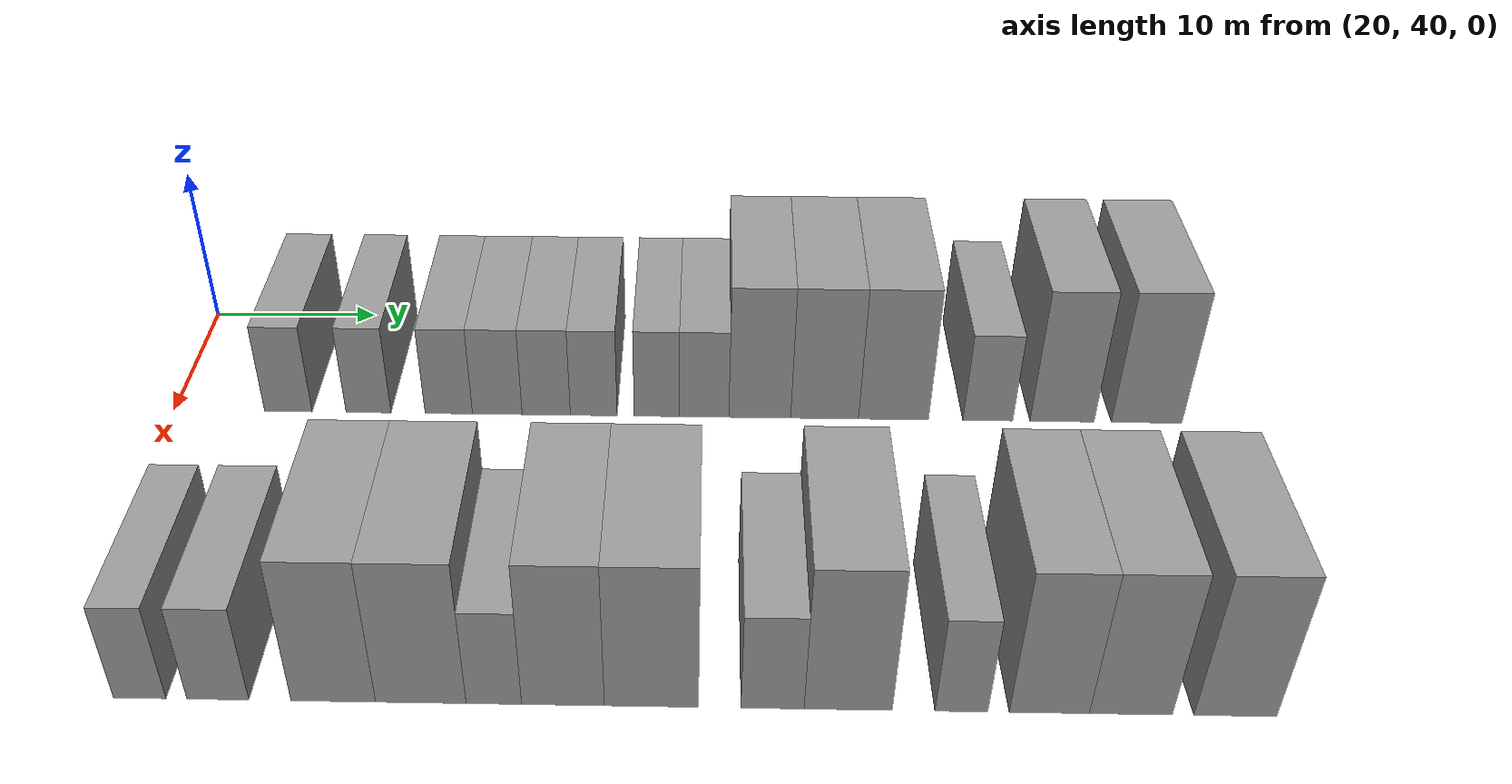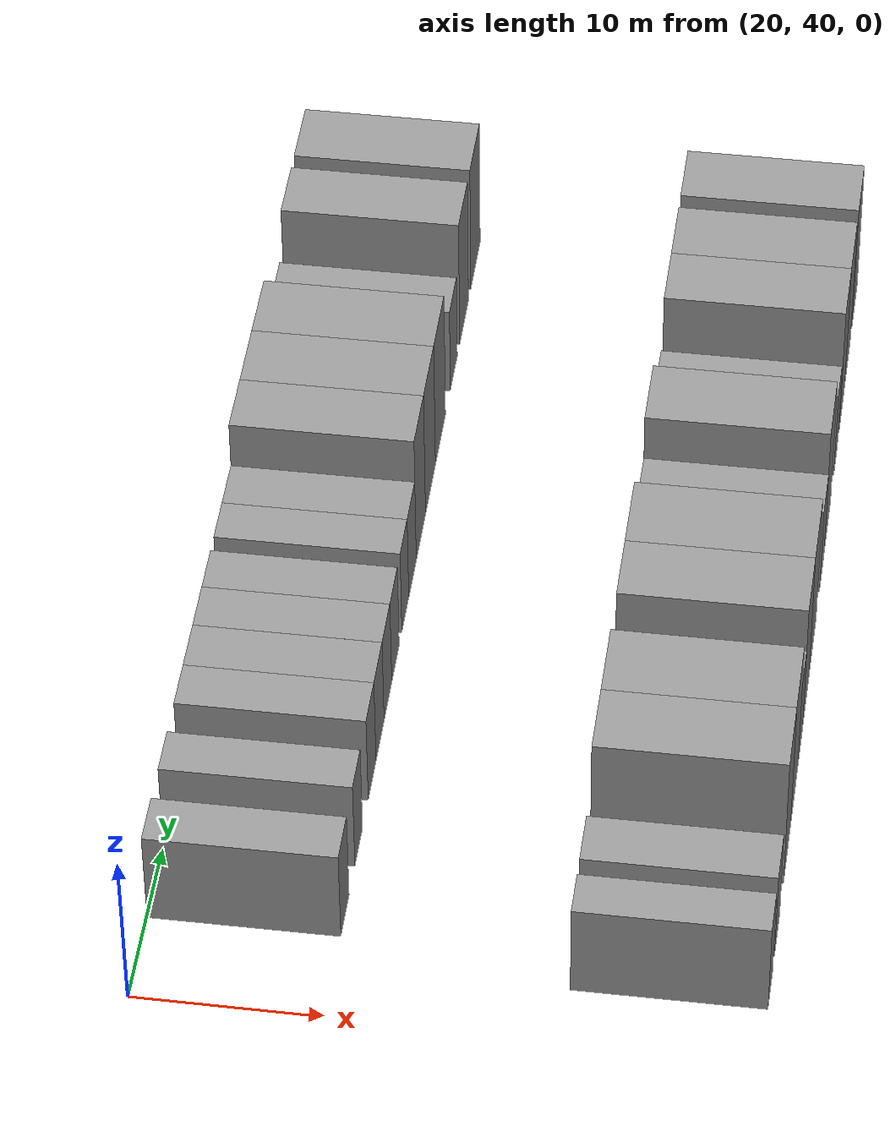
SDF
<sdf version="1.6">
 <world name="default">
  <model name="building_69">
   <static>1</static>
   <pose>25.0000 46.7076 0 0.000000 0.000000 0.000000</pose>
   <link name="link">
    <pose>0 0 3.00 0 0 0</pose>
    <collision name="collision"><geometry><box><size>10.0000 2.7882 6.0000</size></box></geometry></collision>
    <visual name="visual">
     <cast_shadows>0</cast_shadows>
     <geometry><box><size>10.0000 2.7882 6.0000</size></box></geometry>
     <material>
      <script>
       <uri>model://grey_wall/materials/scripts</uri>
       <uri>model://grey_wall/materials/textures</uri>
       <name>vrc/grey_wall</name>
      </script>
     </material>
    </visual>
   </link>
  </model>
  <model name="building_70">
   <static>1</static>
   <pose>25.0000 51.4204 0 0.000000 0.000000 0.000000</pose>
   <link name="link">
    <pose>0 0 3.00 0 0 0</pose>
    <collision name="collision"><geometry><box><size>10.0000 2.6373 6.0000</size></box></geometry></collision>
    <visual name="visual">
     <cast_shadows>0</cast_shadows>
     <geometry><box><size>10.0000 2.6373 6.0000</size></box></geometry>
     <material>
      <script>
       <uri>model://grey_wall/materials/scripts</uri>
       <uri>model://grey_wall/materials/textures</uri>
       <name>vrc/grey_wall</name>
      </script>
     </material>
    </visual>
   </link>
  </model>
  <model name="building_71">
   <static>1</static>
   <pose>25.0000 56.1259 0 0.000000 0.000000 0.000000</pose>
   <link name="link">
    <pose>0 0 3.00 0 0 0</pose>
    <collision name="collision"><geometry><box><size>10.0000 2.7737 6.0000</size></box></geometry></collision>
    <visual name="visual">
     <cast_shadows>0</cast_shadows>
     <geometry><box><size>10.0000 2.7737 6.0000</size></box></geometry>
     <material>
      <script>
       <uri>model://grey_wall/materials/scripts</uri>
       <uri>model://grey_wall/materials/textures</uri>
       <name>vrc/grey_wall</name>
      </script>
     </material>
    </visual>
   </link>
  </model>
  <model name="building_72">
   <static>1</static>
   <pose>25.0000 58.9676 0 0.000000 0.000000 0.000000</pose>
   <link name="link">
    <pose>0 0 3.00 0 0 0</pose>
    <collision name="collision"><geometry><box><size>10.0000 2.9098 6.0000</size></box></geometry></collision>
    <visual name="visual">
     <cast_shadows>0</cast_shadows>
     <geometry><box><size>10.0000 2.9098 6.0000</size></box></geometry>
     <material>
      <script>
       <uri>model://grey_wall/materials/scripts</uri>
       <uri>model://grey_wall/materials/textures</uri>
       <name>vrc/grey_wall</name>
      </script>
     </material>
    </visual>
   </link>
  </model>
  <model name="building_73">
   <static>1</static>
   <pose>25.0000 61.8319 0 0.000000 0.000000 0.000000</pose>
   <link name="link">
    <pose>0 0 3.00 0 0 0</pose>
    <collision name="collision"><geometry><box><size>10.0000 2.8187 6.0000</size></box></geometry></collision>
    <visual name="visual">
     <cast_shadows>0</cast_shadows>
     <geometry><box><size>10.0000 2.8187 6.0000</size></box></geometry>
     <material>
      <script>
       <uri>model://grey_wall/materials/scripts</uri>
       <uri>model://grey_wall/materials/textures</uri>
       <name>vrc/grey_wall</name>
      </script>
     </material>
    </visual>
   </link>
  </model>
  <model name="building_74">
   <static>1</static>
   <pose>25.0000 64.6083 0 0.000000 0.000000 0.000000</pose>
   <link name="link">
    <pose>0 0 3.00 0 0 0</pose>
    <collision name="collision"><geometry><box><size>10.0000 2.7341 6.0000</size></box></geometry></collision>
    <visual name="visual">
     <cast_shadows>0</cast_shadows>
     <geometry><box><size>10.0000 2.7341 6.0000</size></box></geometry>
     <material>
      <script>
       <uri>model://grey_wall/materials/scripts</uri>
       <uri>model://grey_wall/materials/textures</uri>
       <name>vrc/grey_wall</name>
      </script>
     </material>
    </visual>
   </link>
  </model>
  <model name="building_75">
   <static>1</static>
   <pose>25.0000 68.2912 0 0.000000 0.000000 0.000000</pose>
   <link name="link">
    <pose>0 0 3.00 0 0 0</pose>
    <collision name="collision"><geometry><box><size>10.0000 2.6317 6.0000</size></box></geometry></collision>
    <visual name="visual">
     <cast_shadows>0</cast_shadows>
     <geometry><box><size>10.0000 2.6317 6.0000</size></box></geometry>
     <material>
      <script>
       <uri>model://grey_wall/materials/scripts</uri>
       <uri>model://grey_wall/materials/textures</uri>
       <name>vrc/grey_wall</name>
      </script>
     </material>
    </visual>
   </link>
  </model>
  <model name="building_76">
   <static>1</static>
   <pose>25.0000 71.0443 0 0.000000 0.000000 0.000000</pose>
   <link name="link">
    <pose>0 0 3.00 0 0 0</pose>
    <collision name="collision"><geometry><box><size>10.0000 2.8744 6.0000</size></box></geometry></collision>
    <visual name="visual">
     <cast_shadows>0</cast_shadows>
     <geometry><box><size>10.0000 2.8744 6.0000</size></box></geometry>
     <material>
      <script>
       <uri>model://grey_wall/materials/scripts</uri>
       <uri>model://grey_wall/materials/textures</uri>
       <name>vrc/grey_wall</name>
      </script>
     </material>
    </visual>
   </link>
  </model>
  <model name="building_77">
   <static>1</static>
   <pose>25.0000 74.2816 0 0.000000 0.000000 0.000000</pose>
   <link name="link">
    <pose>0 0 4.50 0 0 0</pose>
    <collision name="collision"><geometry><box><size>10.0000 3.6001 9.0000</size></box></geometry></collision>
    <visual name="visual">
     <cast_shadows>0</cast_shadows>
     <geometry><box><size>10.0000 3.6001 9.0000</size></box></geometry>
     <material>
      <script>
       <uri>model://grey_wall/materials/scripts</uri>
       <uri>model://grey_wall/materials/textures</uri>
       <name>vrc/grey_wall</name>
      </script>
     </material>
    </visual>
   </link>
  </model>
  <model name="building_78">
   <static>1</static>
   <pose>25.0000 78.0530 0 0.000000 0.000000 0.000000</pose>
   <link name="link">
    <pose>0 0 4.50 0 0 0</pose>
    <collision name="collision"><geometry><box><size>10.0000 3.9428 9.0000</size></box></geometry></collision>
    <visual name="visual">
     <cast_shadows>0</cast_shadows>
     <geometry><box><size>10.0000 3.9428 9.0000</size></box></geometry>
     <material>
      <script>
       <uri>model://grey_wall/materials/scripts</uri>
       <uri>model://grey_wall/materials/textures</uri>
       <name>vrc/grey_wall</name>
      </script>
     </material>
    </visual>
   </link>
  </model>
  <model name="building_79">
   <static>1</static>
   <pose>25.0000 82.0586 0 0.000000 0.000000 0.000000</pose>
   <link name="link">
    <pose>0 0 4.50 0 0 0</pose>
    <collision name="collision"><geometry><box><size>10.0000 4.0683 9.0000</size></box></geometry></collision>
    <visual name="visual">
     <cast_shadows>0</cast_shadows>
     <geometry><box><size>10.0000 4.0683 9.0000</size></box></geometry>
     <material>
      <script>
       <uri>model://grey_wall/materials/scripts</uri>
       <uri>model://grey_wall/materials/textures</uri>
       <name>vrc/grey_wall</name>
      </script>
     </material>
    </visual>
   </link>
  </model>
  <model name="building_80">
   <static>1</static>
   <pose>25.0000 87.5344 0 0.000000 0.000000 0.000000</pose>
   <link name="link">
    <pose>0 0 3.00 0 0 0</pose>
    <collision name="collision"><geometry><box><size>10.0000 2.8834 6.0000</size></box></geometry></collision>
    <visual name="visual">
     <cast_shadows>0</cast_shadows>
     <geometry><box><size>10.0000 2.8834 6.0000</size></box></geometry>
     <material>
      <script>
       <uri>model://grey_wall/materials/scripts</uri>
       <uri>model://grey_wall/materials/textures</uri>
       <name>vrc/grey_wall</name>
      </script>
     </material>
    </visual>
   </link>
  </model>
  <model name="building_81">
   <static>1</static>
   <pose>25.0000 91.8298 0 0.000000 0.000000 0.000000</pose>
   <link name="link">
    <pose>0 0 4.50 0 0 0</pose>
    <collision name="collision"><geometry><box><size>10.0000 3.7073 9.0000</size></box></geometry></collision>
    <visual name="visual">
     <cast_shadows>0</cast_shadows>
     <geometry><box><size>10.0000 3.7073 9.0000</size></box></geometry>
     <material>
      <script>
       <uri>model://grey_wall/materials/scripts</uri>
       <uri>model://grey_wall/materials/textures</uri>
       <name>vrc/grey_wall</name>
      </script>
     </material>
    </visual>
   </link>
  </model>
  <model name="building_82">
   <static>1</static>
   <pose>25.0000 96.7213 0 0.000000 0.000000 0.000000</pose>
   <link name="link">
    <pose>0 0 4.50 0 0 0</pose>
    <collision name="collision"><geometry><box><size>10.0000 4.0758 9.0000</size></box></geometry></collision>
    <visual name="visual">
     <cast_shadows>0</cast_shadows>
     <geometry><box><size>10.0000 4.0758 9.0000</size></box></geometry>
     <material>
      <script>
       <uri>model://grey_wall/materials/scripts</uri>
       <uri>model://grey_wall/materials/textures</uri>
       <name>vrc/grey_wall</name>
      </script>
     </material>
    </visual>
   </link>
  </model>
  <model name="building_175">
   <static>1</static>
   <pose>47.0000 44.5266 0 0.000000 0.000000 0.000000</pose>
   <link name="link">
    <pose>0 0 3.00 0 0 0</pose>
    <collision name="collision"><geometry><box><size>10.0000 2.4916 6.0000</size></box></geometry></collision>
    <visual name="visual">
     <cast_shadows>0</cast_shadows>
     <geometry><box><size>10.0000 2.4916 6.0000</size></box></geometry>
     <material>
      <script>
       <uri>model://grey_wall/materials/scripts</uri>
       <uri>model://grey_wall/materials/textures</uri>
       <name>vrc/grey_wall</name>
      </script>
     </material>
    </visual>
   </link>
  </model>
  <model name="building_176">
   <static>1</static>
   <pose>47.0000 48.2429 0 0.000000 0.000000 0.000000</pose>
   <link name="link">
    <pose>0 0 3.00 0 0 0</pose>
    <collision name="collision"><geometry><box><size>10.0000 2.9412 6.0000</size></box></geometry></collision>
    <visual name="visual">
     <cast_shadows>0</cast_shadows>
     <geometry><box><size>10.0000 2.9412 6.0000</size></box></geometry>
     <material>
      <script>
       <uri>model://grey_wall/materials/scripts</uri>
       <uri>model://grey_wall/materials/textures</uri>
       <name>vrc/grey_wall</name>
      </script>
     </material>
    </visual>
   </link>
  </model>
  <model name="building_177">
   <static>1</static>
   <pose>47.0000 53.7137 0 0.000000 0.000000 0.000000</pose>
   <link name="link">
    <pose>0 0 4.50 0 0 0</pose>
    <collision name="collision"><geometry><box><size>10.0000 4.0004 9.0000</size></box></geometry></collision>
    <visual name="visual">
     <cast_shadows>0</cast_shadows>
     <geometry><box><size>10.0000 4.0004 9.0000</size></box></geometry>
     <material>
      <script>
       <uri>model://grey_wall/materials/scripts</uri>
       <uri>model://grey_wall/materials/textures</uri>
       <name>vrc/grey_wall</name>
      </script>
     </material>
    </visual>
   </link>
  </model>
  <model name="building_178">
   <static>1</static>
   <pose>47.0000 57.8544 0 0.000000 0.000000 0.000000</pose>
   <link name="link">
    <pose>0 0 4.50 0 0 0</pose>
    <collision name="collision"><geometry><box><size>10.0000 4.2809 9.0000</size></box></geometry></collision>
    <visual name="visual">
     <cast_shadows>0</cast_shadows>
     <geometry><box><size>10.0000 4.2809 9.0000</size></box></geometry>
     <material>
      <script>
       <uri>model://grey_wall/materials/scripts</uri>
       <uri>model://grey_wall/materials/textures</uri>
       <name>vrc/grey_wall</name>
      </script>
     </material>
    </visual>
   </link>
  </model>
  <model name="building_179">
   <static>1</static>
   <pose>47.0000 61.3026 0 0.000000 0.000000 0.000000</pose>
   <link name="link">
    <pose>0 0 3.00 0 0 0</pose>
    <collision name="collision"><geometry><box><size>10.0000 2.6156 6.0000</size></box></geometry></collision>
    <visual name="visual">
     <cast_shadows>0</cast_shadows>
     <geometry><box><size>10.0000 2.6156 6.0000</size></box></geometry>
     <material>
      <script>
       <uri>model://grey_wall/materials/scripts</uri>
       <uri>model://grey_wall/materials/textures</uri>
       <name>vrc/grey_wall</name>
      </script>
     </material>
    </visual>
   </link>
  </model>
  <model name="building_180">
   <static>1</static>
   <pose>47.0000 64.5624 0 0.000000 0.000000 0.000000</pose>
   <link name="link">
    <pose>0 0 4.50 0 0 0</pose>
    <collision name="collision"><geometry><box><size>10.0000 3.9040 9.0000</size></box></geometry></collision>
    <visual name="visual">
     <cast_shadows>0</cast_shadows>
     <geometry><box><size>10.0000 3.9040 9.0000</size></box></geometry>
     <material>
      <script>
       <uri>model://grey_wall/materials/scripts</uri>
       <uri>model://grey_wall/materials/textures</uri>
       <name>vrc/grey_wall</name>
      </script>
     </material>
    </visual>
   </link>
  </model>
  <model name="building_181">
   <static>1</static>
   <pose>47.0000 68.7230 0 0.000000 0.000000 0.000000</pose>
   <link name="link">
    <pose>0 0 4.50 0 0 0</pose>
    <collision name="collision"><geometry><box><size>10.0000 4.4172 9.0000</size></box></geometry></collision>
    <visual name="visual">
     <cast_shadows>0</cast_shadows>
     <geometry><box><size>10.0000 4.4172 9.0000</size></box></geometry>
     <material>
      <script>
       <uri>model://grey_wall/materials/scripts</uri>
       <uri>model://grey_wall/materials/textures</uri>
       <name>vrc/grey_wall</name>
      </script>
     </material>
    </visual>
   </link>
  </model>
  <model name="building_182">
   <static>1</static>
   <pose>47.0000 74.4105 0 0.000000 0.000000 0.000000</pose>
   <link name="link">
    <pose>0 0 3.00 0 0 0</pose>
    <collision name="collision"><geometry><box><size>10.0000 2.9579 6.0000</size></box></geometry></collision>
    <visual name="visual">
     <cast_shadows>0</cast_shadows>
     <geometry><box><size>10.0000 2.9579 6.0000</size></box></geometry>
     <material>
      <script>
       <uri>model://grey_wall/materials/scripts</uri>
       <uri>model://grey_wall/materials/textures</uri>
       <name>vrc/grey_wall</name>
      </script>
     </material>
    </visual>
   </link>
  </model>
  <model name="building_183">
   <static>1</static>
   <pose>47.0000 77.9541 0 0.000000 0.000000 0.000000</pose>
   <link name="link">
    <pose>0 0 4.50 0 0 0</pose>
    <collision name="collision"><geometry><box><size>10.0000 4.1292 9.0000</size></box></geometry></collision>
    <visual name="visual">
     <cast_shadows>0</cast_shadows>
     <geometry><box><size>10.0000 4.1292 9.0000</size></box></geometry>
     <material>
      <script>
       <uri>model://grey_wall/materials/scripts</uri>
       <uri>model://grey_wall/materials/textures</uri>
       <name>vrc/grey_wall</name>
      </script>
     </material>
    </visual>
   </link>
  </model>
  <model name="building_184">
   <static>1</static>
   <pose>47.0000 83.2530 0 0.000000 0.000000 0.000000</pose>
   <link name="link">
    <pose>0 0 3.00 0 0 0</pose>
    <collision name="collision"><geometry><box><size>10.0000 2.4685 6.0000</size></box></geometry></collision>
    <visual name="visual">
     <cast_shadows>0</cast_shadows>
     <geometry><box><size>10.0000 2.4685 6.0000</size></box></geometry>
     <material>
      <script>
       <uri>model://grey_wall/materials/scripts</uri>
       <uri>model://grey_wall/materials/textures</uri>
       <name>vrc/grey_wall</name>
      </script>
     </material>
    </visual>
   </link>
  </model>
  <model name="building_185">
   <static>1</static>
   <pose>47.0000 87.3559 0 0.000000 0.000000 0.000000</pose>
   <link name="link">
    <pose>0 0 4.50 0 0 0</pose>
    <collision name="collision"><geometry><box><size>10.0000 3.7373 9.0000</size></box></geometry></collision>
    <visual name="visual">
     <cast_shadows>0</cast_shadows>
     <geometry><box><size>10.0000 3.7373 9.0000</size></box></geometry>
     <material>
      <script>
       <uri>model://grey_wall/materials/scripts</uri>
       <uri>model://grey_wall/materials/textures</uri>
       <name>vrc/grey_wall</name>
      </script>
     </material>
    </visual>
   </link>
  </model>
  <model name="building_186">
   <static>1</static>
   <pose>47.0000 91.1554 0 0.000000 0.000000 0.000000</pose>
   <link name="link">
    <pose>0 0 4.50 0 0 0</pose>
    <collision name="collision"><geometry><box><size>10.0000 3.8617 9.0000</size></box></geometry></collision>
    <visual name="visual">
     <cast_shadows>0</cast_shadows>
     <geometry><box><size>10.0000 3.8617 9.0000</size></box></geometry>
     <material>
      <script>
       <uri>model://grey_wall/materials/scripts</uri>
       <uri>model://grey_wall/materials/textures</uri>
       <name>vrc/grey_wall</name>
      </script>
     </material>
    </visual>
   </link>
  </model>
  <model name="building_187">
   <static>1</static>
   <pose>47.0000 96.0123 0 0.000000 0.000000 0.000000</pose>
   <link name="link">
    <pose>0 0 4.50 0 0 0</pose>
    <collision name="collision"><geometry><box><size>10.0000 3.8521 9.0000</size></box></geometry></collision>
    <visual name="visual">
     <cast_shadows>0</cast_shadows>
     <geometry><box><size>10.0000 3.8521 9.0000</size></box></geometry>
     <material>
      <script>
       <uri>model://grey_wall/materials/scripts</uri>
       <uri>model://grey_wall/materials/textures</uri>
       <name>vrc/grey_wall</name>
      </script>
     </material>
    </visual>
   </link>
  </model>
 </world>
</sdf>
